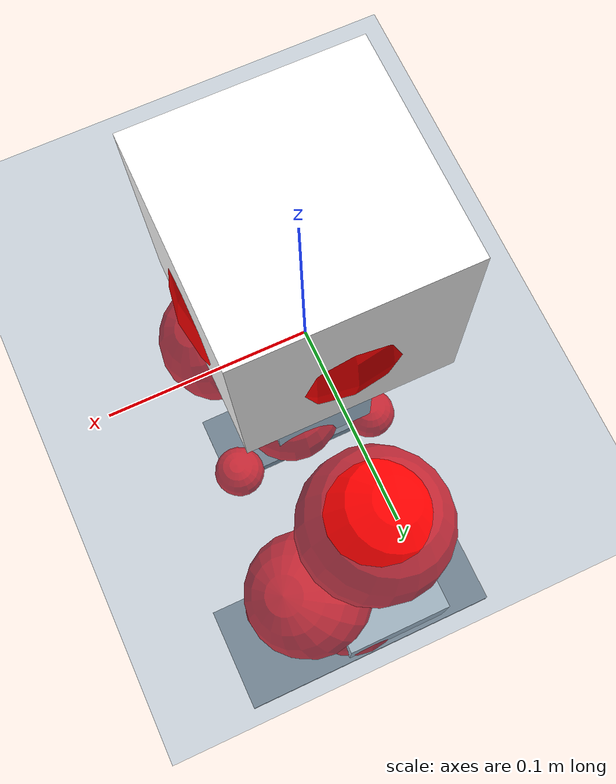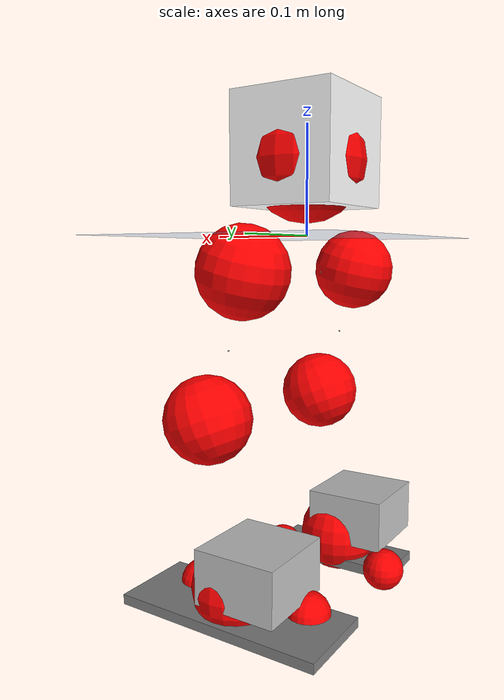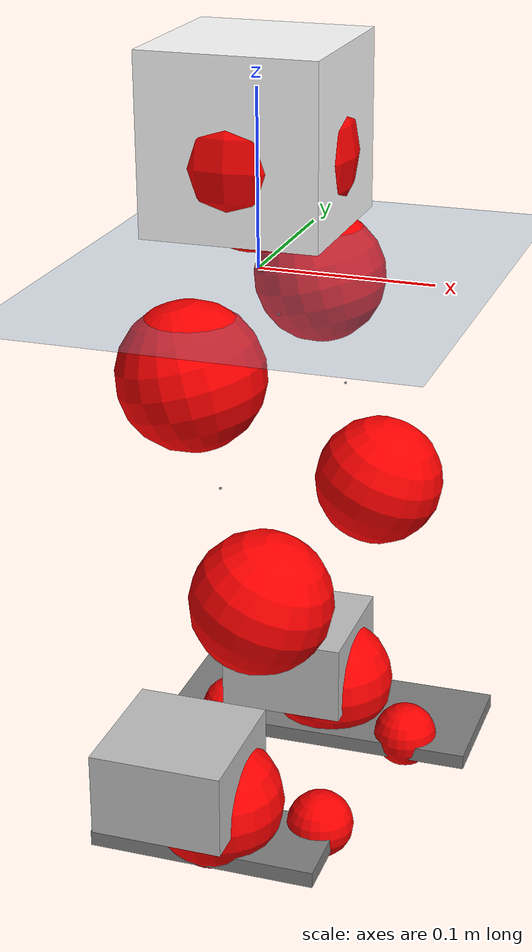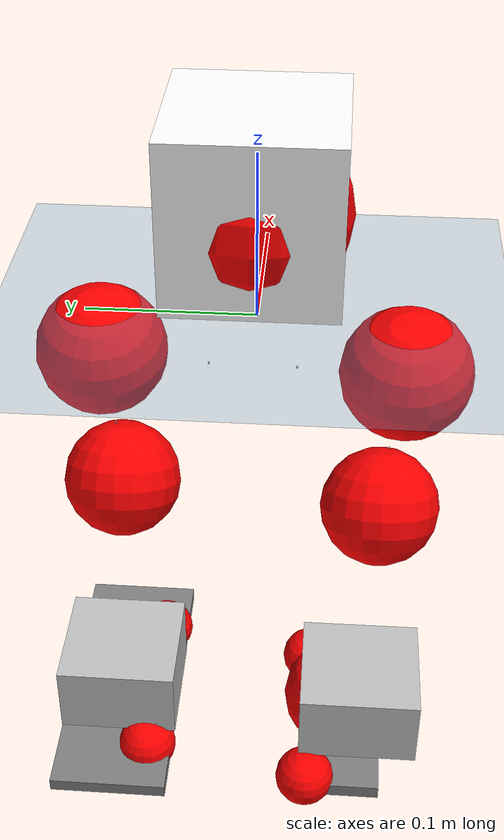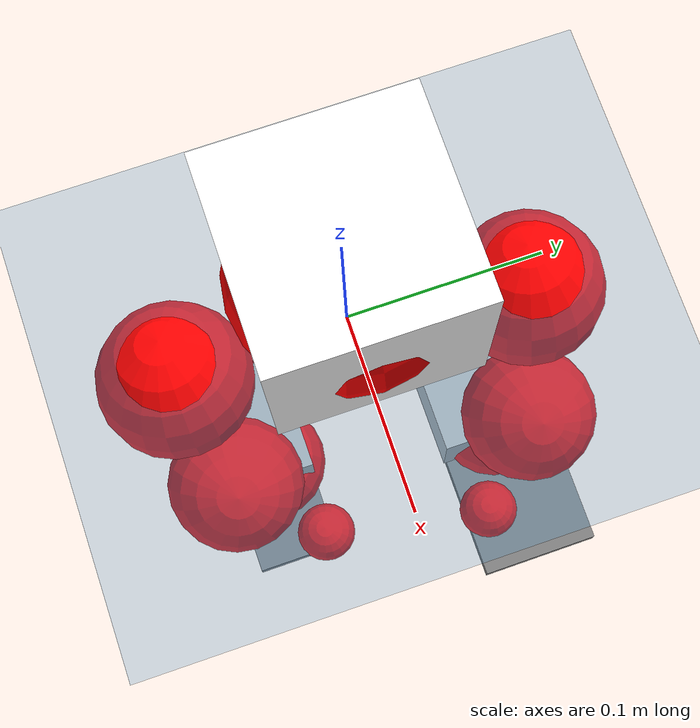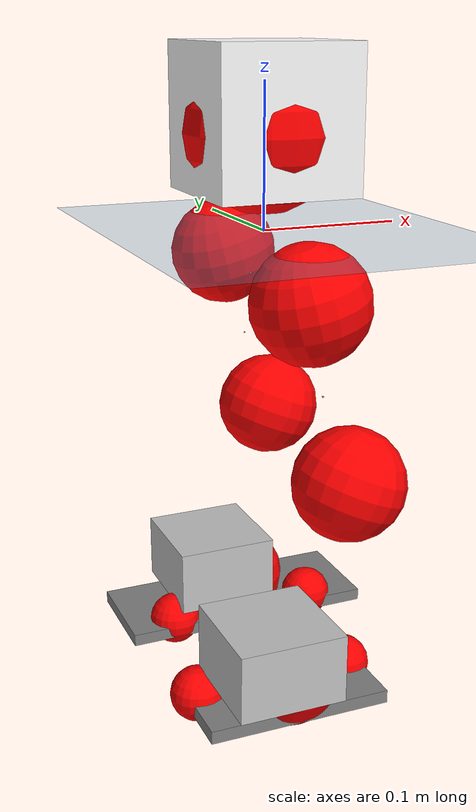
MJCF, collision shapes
<mujoco model="pi_12dof_release_v1">
  <compiler angle="radian" assetdir="assets" balanceinertia="true" inertiafromgeom="false"/>

  <option timestep="0.005" density="1.2" viscosity="2e-05"/>

  <size nkey="1"/>

  <visual>
    <quality shadowsize="8192"/>
    <map shadowclip="0.5"/>
  </visual>

  <default>
    <default class="/">
      <joint armature="0.01" damping="0.01" frictionloss="0.01"/>
      <geom contype="0" conaffinity="0" group="1" solref="-1000 -80"/>
      <site size="0.01 0.005 0.005" group="5"/>
      <general forcelimited="true" biastype="affine" gainprm="20" biasprm="0 -20 -0.5"/>
      <default class="foot">
        <geom size="0.0845 0.036 0.005" type="box" condim="6" group="4" priority="1" friction="0.9 0.2 0.2" solimp="0.015 1 0.005"/>
      </default>
      <default class="reward_collision_sphere">
        <geom group="5" rgba="1 0 0 1"/>
      </default>
    </default>
  </default>

  <asset>
    <texture type="skybox" colorspace="auto" name="//unnamed_texture_0" builtin="gradient" rgb1="0.95 0.95 0.95" rgb2="0.95 0.95 0.95" width="100" height="600"/>
    <texture type="2d" colorspace="auto" name="texplane" builtin="checker" rgb1="0.345 0.575 0.748" rgb2="0.345 0.575 0.748" markrgb="1 1 1" width="512" height="512"/>
    <material name="MatPlane" class="/" texture="texplane" texuniform="true" texrepeat="2 2" specular="0.9"/>
    <mesh name="baselink_1" class="/" file="baselink_1.STL"/>
    <mesh name="r_hip_pitch_link" class="/" file="r_hip_pitch_link.STL"/>
    <mesh name="r_hip_roll_link" class="/" file="r_hip_roll_link.STL"/>
    <mesh name="r_thigh_link" class="/" file="r_thigh_link.STL"/>
    <mesh name="r_calf_link" class="/" file="r_calf_link.STL"/>
    <mesh name="r_ankle_pitch_link" class="/" file="r_ankle_pitch_link.STL"/>
    <mesh name="r_ankle_roll_link" class="/" file="r_ankle_roll_link.STL"/>
    <mesh name="l_hip_pitch_link" class="/" file="l_hip_pitch_link.STL"/>
    <mesh name="l_hip_roll_link" class="/" file="l_hip_roll_link.STL"/>
    <mesh name="l_thigh_link" class="/" file="l_thigh_link.STL"/>
    <mesh name="l_calf_link" class="/" file="l_calf_link.STL"/>
    <mesh name="l_ankle_pitch_link" class="/" file="l_ankle_pitch_link.STL"/>
    <mesh name="l_ankle_roll_link" class="/" file="l_ankle_roll_link.STL"/>
  </asset>

  <worldbody>
    <geom name="floor" class="/" size="100 100 0.125" type="plane" group="0" material="MatPlane"/>
    <light name="toplight_shadow" class="/" pos="0 0 5" dir="0.0990148 0.0990148 -0.990148" type="directional" ambient="0.04 0.04 0.04" diffuse="0.55 0.55 0.55" specular="0.12 0.12 0.12"/>
    <light name="toplight_fill" class="/" pos="0 0 5" dir="0.0990148 0.0990148 -0.990148" type="directional" castshadow="false" ambient="0.04 0.04 0.04" diffuse="0.3 0.3 0.3" specular="0.08 0.08 0.08"/>
    <body name="trunk" pos="0.000110112 0.000930415 -0.00208257" quat="1 0.000442274 -0.000211527 -2.10229e-05">
      <inertial pos="0.00220732 0.00495877 0.0380053" quat="0.695346 0.0106796 0.00913625 0.718537" mass="2.2094" diaginertia="0.00531669 0.0195967 0.00367413"/>
      <joint name="//unnamed_joint_0" type="free"/>
      <geom name="//unnamed_geom_1" class="/" type="mesh" density="0" rgba="1 1 1 1" mesh="baselink_1"/>
      <geom name="//unnamed_geom_2" class="/" size="0.0497919 0.0497919 0.0497919" pos="0 0 0.0776117" type="box" rgba="1 1 1 1"/>
      <geom name="//unnamed_geom_3" class="reward_collision_sphere" size="0.0547711" pos="0 0 0.0679102"/>
      <site name="imu" class="/" pos="-0.00968523 0.00625614 0.00619326" size="0.00995839"/>
      <camera name="track" class="/" pos="0 -2.30819 0" quat="0.707107 0.707107 0 0" mode="trackcom"/>
      <camera name="ego_camera" class="/" pos="0.0647455 0 0.174626" quat="-0.5 -0.5 0.5 0.5"/>
      <body name="r_hip_pitch_link" pos="-0.00210118 -0.0251875 -0.0312745" quat="0.99212 -0.000189614 -0.125292 -0.000239368">
        <inertial pos="0.000969368 -0.0613075 0.00271392" quat="-0.00424402 0.685113 -0.026733 0.727934" mass="0.378208" diaginertia="5.26846e-05 0.000204369 7.26254e-05"/>
        <joint name="r_hip_pitch_joint" class="/" pos="0 0 0" axis="0.0139534 -0.999832 -0.0119049" stiffness="0.00823591" range="-1.75694 1.25046" armature="0.00909752" damping="0" frictionloss="0.00770423"/>
        <geom name="//unnamed_geom_4" class="/" type="mesh" density="0" rgba="0.75294 0.75294 0.75294 1" mesh="r_hip_pitch_link"/>
        <geom name="//unnamed_geom_5" class="/" size="0.000497919 0.000497919 0.000497919" type="box" rgba="0.75294 0.75294 0.75294 1"/>
        <body name="r_hip_roll_link" pos="-0.003452 -0.064371 0.00217687" quat="0.999996 0.0013691 0.00219957 0.00142029">
          <inertial pos="0.00238666 -0.00683694 -0.0636357" quat="0.710423 -0.078011 -0.0856941 0.694168" mass="0.383337" diaginertia="0.000166491 0.000529026 0.000109171"/>
          <joint name="r_hip_roll_joint" class="/" pos="0 0 0" axis="-0.999998 0.000748727 -0.00210552" stiffness="0.00203022" range="-0.129239 0.475649" armature="0.00869941" damping="0" frictionloss="0.00900786"/>
          <geom name="//unnamed_geom_6" class="/" type="mesh" density="0" rgba="0.75294 0.75294 0.75294 1" mesh="r_hip_roll_link"/>
          <geom name="//unnamed_geom_7" class="/" size="0.000497919 0.000497919 0.000497919" type="box" rgba="0.75294 0.75294 0.75294 1"/>
          <geom name="//unnamed_geom_8" class="reward_collision_sphere" size="0.0398335"/>
          <body name="r_thigh_link" pos="-0.00340715 0.00578154 -0.065264" quat="0.999999 -0.00101913 0.00110539 0.000476419">
            <inertial pos="0.00415885 0.00214727 -0.0437367" quat="0.735796 0.677148 0.00850415 0.00142357" mass="0.114696" diaginertia="6.01785e-05 0.000184431 4.88968e-05"/>
            <joint name="r_thigh_joint" class="/" pos="0 0 0" axis="-0.0175929 0.000791025 -0.999845" stiffness="0.0198538" range="-0.197933 0.695945" armature="0.00839722" damping="0.0333481" frictionloss="0.00748648"/>
            <geom name="//unnamed_geom_9" class="/" type="mesh" density="0" rgba="0.75294 0.75294 0.75294 1" mesh="r_thigh_link"/>
            <geom name="//unnamed_geom_10" class="/" size="0.000497919 0.000497919 0.000497919" type="box" rgba="0.75294 0.75294 0.75294 1"/>
            <body name="r_calf_link" pos="0.00540938 0.00164415 -0.0684872" quat="0.947545 0.000600212 0.31962 0.000938778">
              <inertial pos="-0.00372377 0.00050783 -0.0683965" quat="0.999826 -0.0141887 -0.00498583 -0.0110215" mass="0.788067" diaginertia="0.00171865 0.00715721 0.000153607"/>
              <joint name="r_calf_joint" class="/" pos="0 0 0" axis="-0.0251711 -0.999569 0.0151206" stiffness="0.00763503" range="-1.65883 0.599086" armature="0.00987157" damping="0" frictionloss="0.00788788"/>
              <geom name="//unnamed_geom_11" class="/" type="mesh" density="0" rgba="0.75294 0.75294 0.75294 1" mesh="r_calf_link"/>
              <geom name="//unnamed_geom_12" class="/" size="0.000497919 0.000497919 0.000497919" type="box" rgba="0.75294 0.75294 0.75294 1"/>
              <geom name="//unnamed_geom_13" class="reward_collision_sphere" size="0.0398335"/>
              <body name="r_ankle_pitch_link" pos="-0.00138126 0.00740421 -0.13254" quat="0.980056 0.000242974 -0.198719 3.45625e-05">
                <inertial pos="0.00444244 0.00477469 -0.00450505" quat="0.00719775 0.702147 -0.00496814 0.711978" mass="0.179851" diaginertia="0.000150376 0.000458799 0.000104023"/>
                <joint name="r_ankle_pitch_joint" class="/" pos="0 0 0" axis="0.0093575 -0.999917 0.00886821" range="-1.27785 0.589055" armature="0.00858145" damping="0.0138787" frictionloss="0.00809679"/>
                <geom name="//unnamed_geom_14" class="/" type="mesh" density="0" rgba="0.75294 0.75294 0.75294 1" mesh="r_ankle_pitch_link"/>
                <geom name="//unnamed_geom_15" class="/" size="0.0388377 0.0398335 0.024896" type="box" rgba="0.75294 0.75294 0.75294 1"/>
                <body name="r_ankle_roll_link" pos="0.0614457 0.0114969 -0.00409561" quat="0.999999 0.000664617 -0.000463891 -0.000652716">
                  <inertial pos="-0.0203357 -0.000508472 -0.0126474" quat="0.555888 0.435418 0.432497 0.560665" mass="0.474621" diaginertia="0.000494262 0.00192891 0.00022698"/>
                  <joint name="r_ankle_roll_joint" class="/" pos="0 0 0" axis="-0.999434 -0.021383 -0.0259663" range="-0.267895 0.103879" armature="0.00900988" damping="0.000944882" frictionloss="0.0109805"/>
                  <geom name="//unnamed_geom_16" class="/" type="mesh" density="0" rgba="0.75294 0.75294 0.75294 1" mesh="r_ankle_roll_link"/>
                  <geom name="//unnamed_geom_17" class="/" type="mesh" rgba="0.75294 0.75294 0.75294 1" mesh="r_ankle_roll_link"/>
                  <geom name="right_foot" class="foot" size="0.0680815 0.0276956 0.00486381" pos="-0.0440269 0 -0.0426864"/>
                  <geom name="//unnamed_geom_19" class="reward_collision_sphere" size="0.0398335" pos="-0.0431637 0 -0.0194029"/>
                  <geom name="//unnamed_geom_20" class="reward_collision_sphere" size="0.0199168" pos="0.0129491 0.0230819 -0.0388059"/>
                  <geom name="//unnamed_geom_21" class="reward_collision_sphere" size="0.0199168" pos="-0.103593 0.0230819 -0.0388059"/>
                  <site name="right_foot" class="foot" pos="-0.0440269 0 -0.0426864" size="0.00995839"/>
                </body>
              </body>
            </body>
          </body>
        </body>
      </body>
      <body name="l_hip_pitch_link" pos="0.0019672 0.0279534 -0.0335418" quat="0.992118 6.13194e-05 -0.125305 6.15245e-08">
        <inertial pos="0.00354809 0.0597125 -0.000418239" quat="-0.035018 0.704011 0.0183951 0.709086" mass="0.405588" diaginertia="5.84959e-05 0.000209194 8.4945e-05"/>
        <joint name="l_hip_pitch_joint" class="/" pos="0 0 0" axis="0.000974173 0.999969 -0.00781761" range="-1.19375 1.68657" armature="0.00964331" damping="0.0205248" frictionloss="0.0102132"/>
        <geom name="//unnamed_geom_22" class="/" type="mesh" density="0" rgba="0.75294 0.75294 0.75294 1" mesh="l_hip_pitch_link"/>
        <geom name="//unnamed_geom_23" class="/" size="0.000497919 0.000497919 0.000497919" type="box" rgba="0.75294 0.75294 0.75294 1"/>
        <body name="l_hip_roll_link" pos="0.00515441 0.0646025 0.00326035" quat="0.999998 0.00063106 -0.000687218 0.00203034">
          <inertial pos="0.00430381 -0.00616494 -0.0578312" quat="0.704647 -0.0706911 -0.072356 0.70231" mass="0.409169" diaginertia="0.000159343 0.000569049 0.000105412"/>
          <joint name="l_hip_roll_joint" class="/" pos="0 0 0" axis="-0.999975 0.00159354 -0.00693632" stiffness="0.00319089" range="-0.505394 0.143807" armature="0.00731505" damping="0.00134534" frictionloss="0.00988096"/>
          <geom name="//unnamed_geom_24" class="/" type="mesh" density="0" rgba="0.75294 0.75294 0.75294 1" mesh="l_hip_roll_link"/>
          <geom name="//unnamed_geom_25" class="/" size="0.000497919 0.000497919 0.000497919" type="box" rgba="0.75294 0.75294 0.75294 1"/>
          <geom name="//unnamed_geom_26" class="reward_collision_sphere" size="0.0398335"/>
          <body name="l_thigh_link" pos="-0.000293461 -0.0017324 -0.0685175" quat="1 3.53113e-05 8.33539e-05 -6.72361e-05">
            <inertial pos="0.00125937 -0.00407446 -0.0498953" quat="0.670915 0.741524 4.04427e-05 0.00376576" mass="0.11161" diaginertia="6.28258e-05 0.000203741 5.26599e-05"/>
            <joint name="l_thigh_joint" class="/" pos="0 0 0" axis="-0.00119778 0.00507703 -0.999986" range="-0.56733 0.332856" armature="0.00982165" damping="0.0177601" frictionloss="0.0109408"/>
            <geom name="//unnamed_geom_27" class="/" type="mesh" density="0" rgba="0.75294 0.75294 0.75294 1" mesh="l_thigh_link"/>
            <geom name="//unnamed_geom_28" class="/" size="0.000497919 0.000497919 0.000497919" type="box" rgba="0.75294 0.75294 0.75294 1"/>
            <body name="l_calf_link" pos="0.00533404 0.00204369 -0.0657299" quat="0.9482 0.00259009 0.317664 0.000241119">
              <inertial pos="0.00216573 0.00159398 -0.0726336" quat="0.999972 0.00430092 -0.00110274 0.00604408" mass="0.799224" diaginertia="0.00168256 0.00729165 0.000136791"/>
              <joint name="l_calf_joint" class="/" pos="0 0 0" axis="-0.000452877 1 0.000727913" stiffness="0.027794" range="-0.712561 1.6185" armature="0.00941513" damping="0.00602062" frictionloss="0.0110658"/>
              <geom name="//unnamed_geom_29" class="/" type="mesh" density="0" rgba="0.75294 0.75294 0.75294 1" mesh="l_calf_link"/>
              <geom name="//unnamed_geom_30" class="/" size="0.000497919 0.000497919 0.000497919" type="box" rgba="0.75294 0.75294 0.75294 1"/>
              <geom name="//unnamed_geom_31" class="reward_collision_sphere" size="0.0398335"/>
              <body name="l_ankle_pitch_link" pos="0.00108268 -0.00188608 -0.137483" quat="0.98014 -0.000536641 -0.198307 0.000125254">
                <inertial pos="0.00307439 0.000809287 -0.00314033" quat="0.00251403 0.70403 -0.00760469 0.710125" mass="0.183748" diaginertia="0.000148077 0.000455037 0.000107116"/>
                <joint name="l_ankle_pitch_joint" class="/" pos="0 0 0" axis="-0.00658097 0.999957 0.00659606" range="-0.570789 1.3047" armature="0.0116941" damping="0" frictionloss="0.0101759"/>
                <geom name="//unnamed_geom_32" class="/" type="mesh" density="0" rgba="0.75294 0.75294 0.75294 1" mesh="l_ankle_pitch_link"/>
                <geom name="//unnamed_geom_33" class="/" size="0.0388377 0.0398335 0.024896" type="box" rgba="0.75294 0.75294 0.75294 1"/>
                <body name="l_ankle_roll_link" pos="0.0644619 0.00286531 0.000575874" quat="1 0.00026231 0.00017695 -0.000607251">
                  <inertial pos="-0.0211694 0.00100338 -0.014822" quat="0.559875 0.431315 0.432599 0.559791" mass="0.503313" diaginertia="0.000554208 0.00211878 0.000236264"/>
                  <joint name="l_ankle_roll_joint" class="/" pos="0 0 0" axis="-0.999996 -0.00137928 -0.0023299" range="-0.260648 0.149345" armature="0.00888313" damping="0.0273174" frictionloss="0.00910201"/>
                  <geom name="//unnamed_geom_34" class="/" type="mesh" density="0" rgba="0.75294 0.75294 0.75294 1" mesh="l_ankle_roll_link"/>
                  <geom name="//unnamed_geom_35" class="/" type="mesh" rgba="0.75294 0.75294 0.75294 1" mesh="l_ankle_roll_link"/>
                  <geom name="left_foot" class="foot" size="0.099046 0.0395471 0.0046336" pos="-0.0440269 0 -0.0426864"/>
                  <geom name="//unnamed_geom_37" class="reward_collision_sphere" size="0.0398335" pos="-0.0431637 0 -0.0194029"/>
                  <geom name="//unnamed_geom_38" class="reward_collision_sphere" size="0.0199168" pos="0.0129491 -0.0230819 -0.0388059"/>
                  <geom name="//unnamed_geom_39" class="reward_collision_sphere" size="0.0199168" pos="-0.103593 -0.0230819 -0.0388059"/>
                  <site name="left_foot" class="foot" pos="-0.0440269 0 -0.0426864" size="0.00995839"/>
                </body>
              </body>
            </body>
          </body>
        </body>
      </body>
    </body>
  </worldbody>

  <contact>
    <pair class="/" geom1="floor" geom2="right_foot" name="//unnamed_contact_1"/>
    <pair class="/" geom1="floor" geom2="left_foot" name="//unnamed_contact_0"/>
  </contact>

  <actuator>
    <general name="r_hip_pitch_joint" class="/" joint="r_hip_pitch_joint" forcerange="-19.8879 19.8879" gainprm="19.5228" biasprm="0 -19.5228 -0.544195"/>
    <general name="r_hip_roll_joint" class="/" joint="r_hip_roll_joint" forcerange="-16.4452 16.4452" gainprm="19.5228" biasprm="0 -19.5228 -0.544195"/>
    <general name="r_thigh_joint" class="/" joint="r_thigh_joint" forcerange="-20.5095 20.5095" gainprm="19.5228" biasprm="0 -19.5228 -0.544195"/>
    <general name="r_calf_joint" class="/" joint="r_calf_joint" forcerange="-21.9946 21.9946" gainprm="19.5228" biasprm="0 -19.5228 -0.544195"/>
    <general name="r_ankle_pitch_joint" class="/" joint="r_ankle_pitch_joint" forcerange="-21.2144 21.2144" gainprm="19.5228" biasprm="0 -19.5228 -0.544195"/>
    <general name="r_ankle_roll_joint" class="/" joint="r_ankle_roll_joint" forcerange="-19.2778 19.2778" gainprm="19.5228" biasprm="0 -19.5228 -0.544195"/>
    <general name="l_hip_pitch_joint" class="/" joint="l_hip_pitch_joint" forcerange="-21.7529 21.7529" gainprm="19.5228" biasprm="0 -19.5228 -0.544195"/>
    <general name="l_hip_roll_joint" class="/" joint="l_hip_roll_joint" forcerange="-21.568 21.568" gainprm="19.5228" biasprm="0 -19.5228 -0.544195"/>
    <general name="l_thigh_joint" class="/" joint="l_thigh_joint" forcerange="-21.6048 21.6048" gainprm="19.5228" biasprm="0 -19.5228 -0.544195"/>
    <general name="l_calf_joint" class="/" joint="l_calf_joint" forcerange="-20.4762 20.4762" gainprm="19.5228" biasprm="0 -19.5228 -0.544195"/>
    <general name="l_ankle_pitch_joint" class="/" joint="l_ankle_pitch_joint" forcerange="-20.268 20.268" gainprm="19.5228" biasprm="0 -19.5228 -0.544195"/>
    <general name="l_ankle_roll_joint" class="/" joint="l_ankle_roll_joint" forcerange="-22.1727 22.1727" gainprm="19.5228" biasprm="0 -19.5228 -0.544195"/>
  </actuator>

  <sensor>
    <gyro site="imu" name="imu_angular_velocity"/>
    <velocimeter site="imu" name="imu_linear_velocity"/>
    <framelinvel objtype="site" objname="left_foot" name="left_foot_global_linear_velocity"/>
    <framelinvel objtype="site" objname="right_foot" name="right_foot_global_linear_velocity"/>
  </sensor>

  <keyframe>
    <key name="home" qpos="0 0 0.291 1 0 0 0 0.4 0 0 -0.8 0.4 0 -0.4 0 0 0.8 -0.4 0"/>
  </keyframe>
</mujoco>
